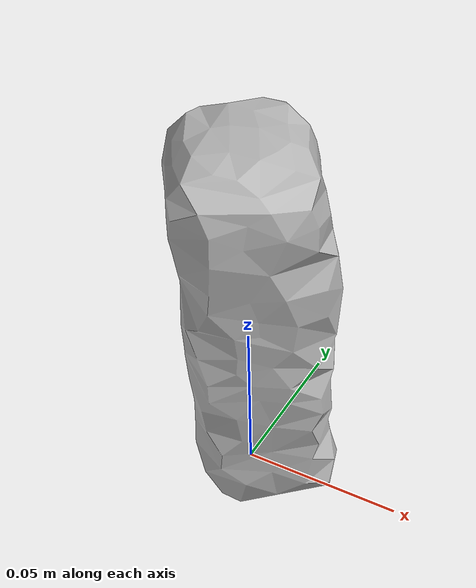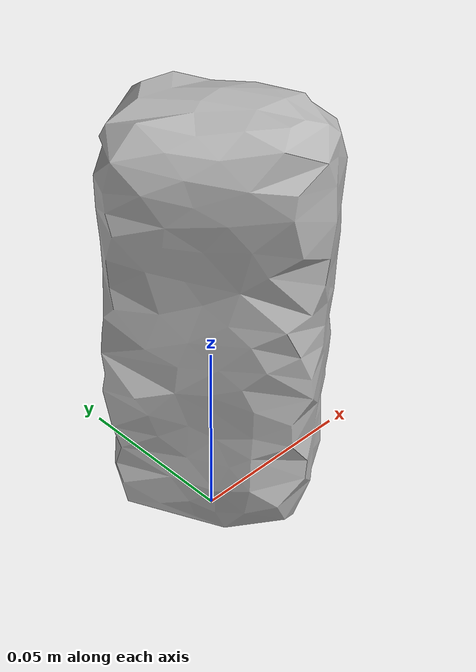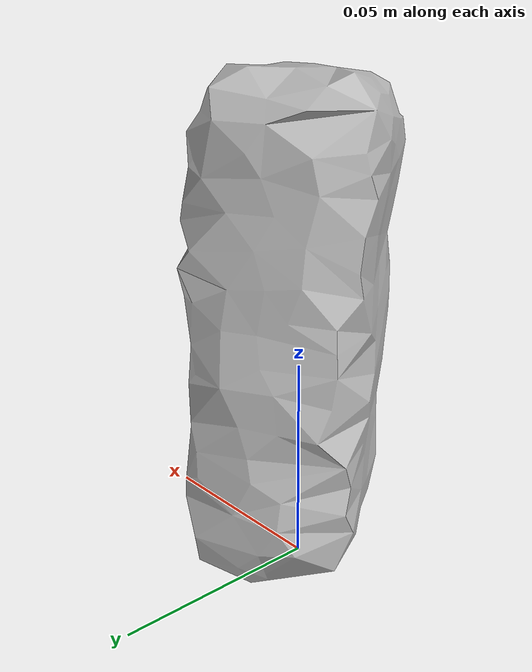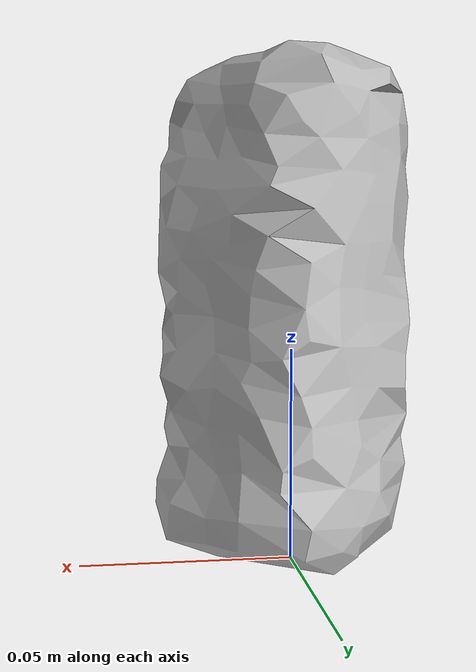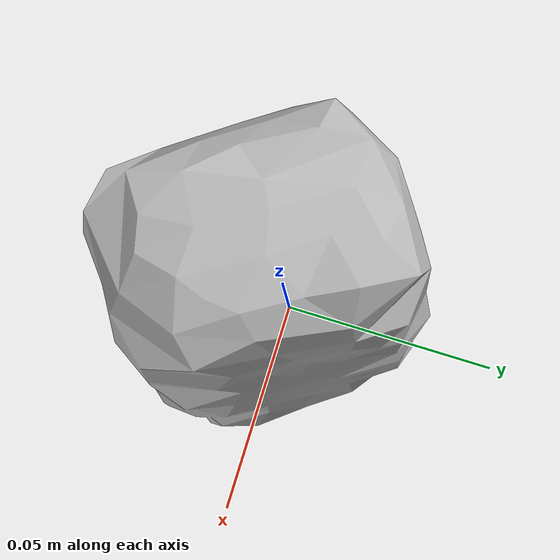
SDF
<?xml version="1.0" ?>
<sdf version="1.4">
  <model name="sticky_notes">
    <link name="sticky_notes_link">
      <inertial>
        <pose>0 0 0 0 0 0</pose>
        <mass>0.08</mass>
      </inertial>

      <visual name="sticky_notes_visual">
        <pose>0 0 0 0 0 0</pose>
        <material>
          <script>
            <uri>model://sticky_notes/materials/scripts</uri>
            <uri>model://sticky_notes/materials/textures</uri>
            <name>sticky_notes</name>
          </script>
        </material>
        <geometry>
          <mesh>
            <uri>model://sticky_notes/meshes/sticky_notes.dae</uri>
          </mesh>
        </geometry>
      </visual>

      <collision name="sticky_notes_collision">
        <pose>0 0 0 0 0 0</pose>
        <geometry>
          <mesh>
            <uri>model://sticky_notes/meshes/sticky_notes.dae</uri>
          </mesh>
        </geometry>
        <surface>
          <friction>
            <ode>
              <mu>0.8</mu>
              <mu2>0.8</mu2>
            </ode>
          </friction>
        </surface>
      </collision>

    </link>
  </model>
</sdf>
